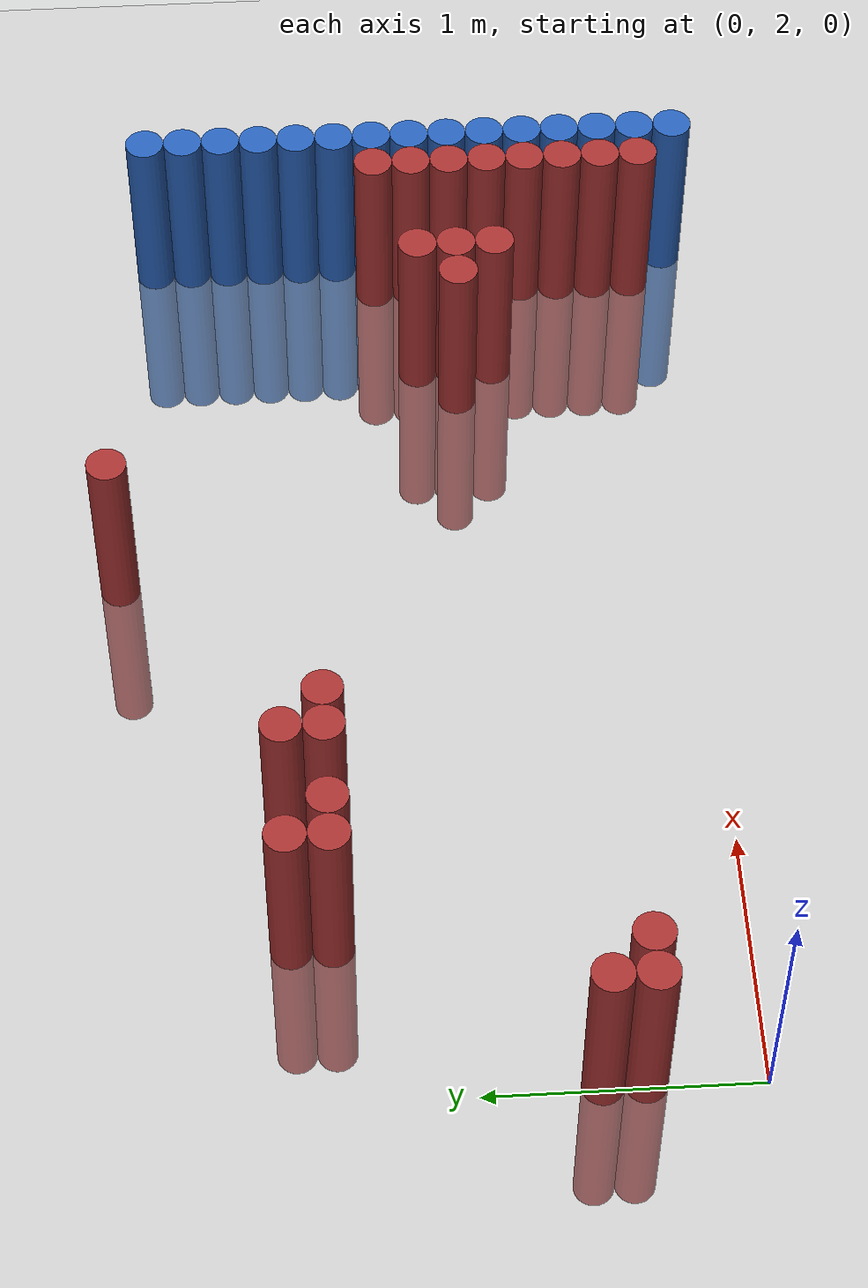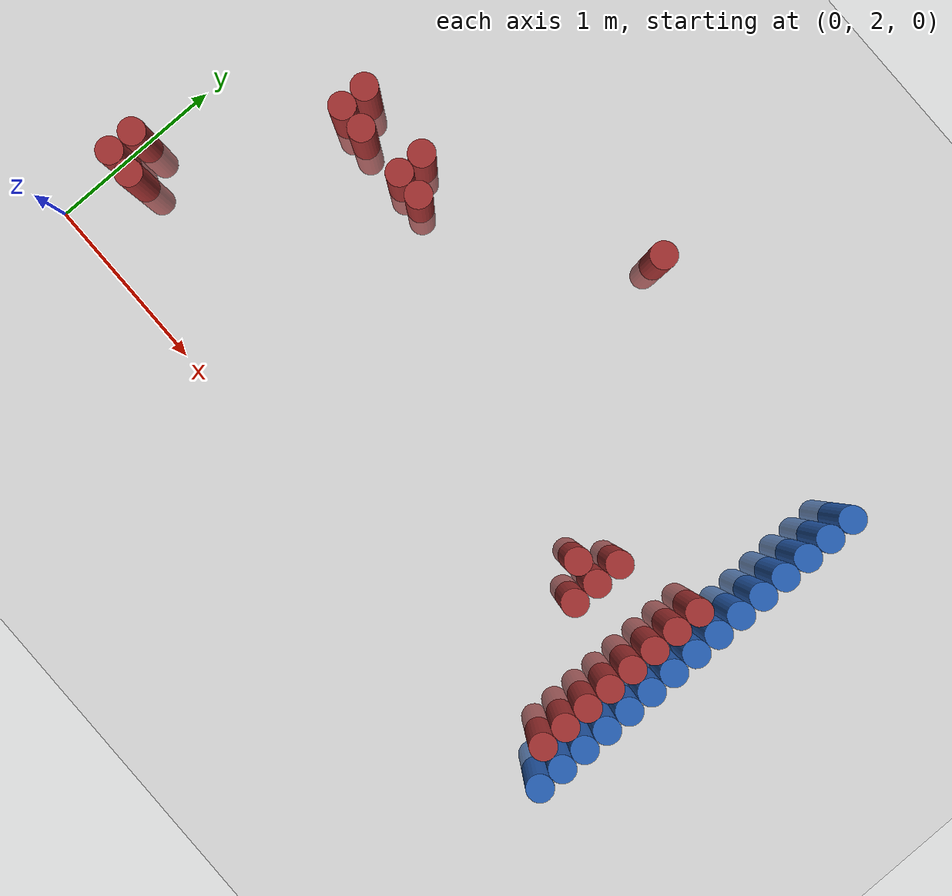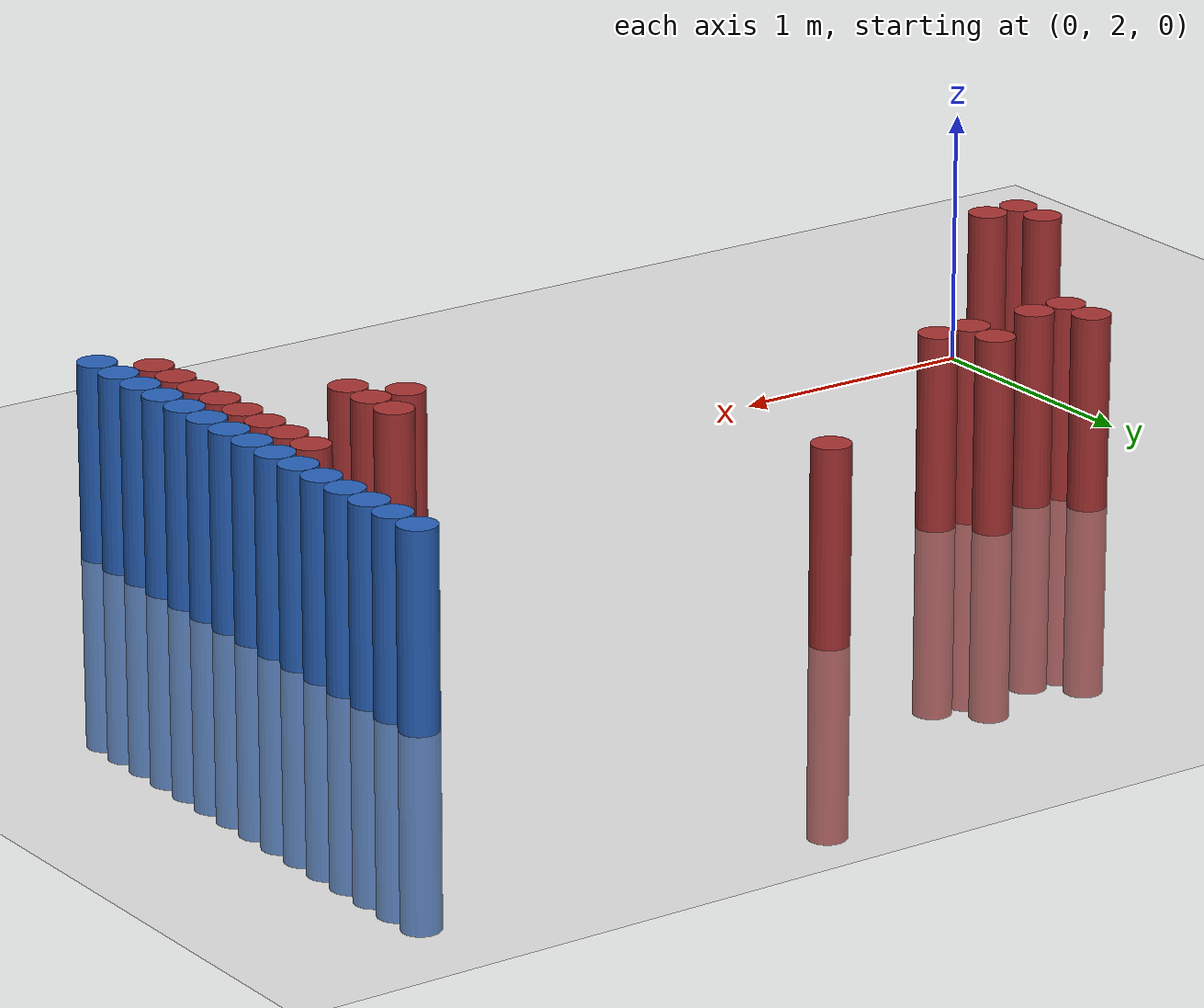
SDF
<sdf version="1.6">
 <world name="default">
  <model name="ground_plane">
   <static>1</static>
   <link name="link">
    <collision name="collision">
     <geometry><plane><normal>0 0 1</normal><size>100 100</size></plane></geometry>
     <surface><friction><ode><mu>100</mu><mu2>50</mu2></ode></friction></surface>
    </collision>
    <visual name="visual">
     <cast_shadows>0</cast_shadows>
     <geometry><plane><normal>0 0 1</normal><size>100 100</size></plane></geometry>
     <material>
      <script><uri>file://media/materials/scripts/gazebo.material</uri><name>Gazebo/Grey</name></script>
     </material>
    </visual>
   </link>
  </model>
  <model name="unit_cylinder_142">
   <static>1</static>
   <pose>3.925000 2.125000 0.000000 0.000000 0.000000 0.000000</pose>
   <link name="link">
    <inertial>
     <mass>1</mass>
     <inertia><ixx>0.145833</ixx><ixy>0</ixy><ixz>0</ixz><iyy>0.145833</iyy><iyz>0</iyz><izz>0.125</izz></inertia>
    </inertial>
    <collision name="collision">
     <geometry><cylinder><radius>0.075000</radius><length>1.5</length></cylinder></geometry>
    </collision>
    <visual name="visual">
     <geometry><cylinder><radius>0.075000</radius><length>1.5</length></cylinder></geometry>
     <material>
      <ambient>0.152000 0.379000 0.720000 1</ambient>
      <diffuse>0.152000 0.379000 0.720000 1</diffuse>
     </material>
     <material>
      <script><name>Gazebo/Grey</name><uri>file://media/materials/scripts/gazebo.material</uri></script>
     </material>
    </visual>
   </link>
  </model>
  <model name="unit_cylinder_144">
   <static>1</static>
   <pose>3.925000 2.275000 0.000000 0.000000 0.000000 0.000000</pose>
   <link name="link">
    <inertial>
     <mass>1</mass>
     <inertia><ixx>0.145833</ixx><ixy>0</ixy><ixz>0</ixz><iyy>0.145833</iyy><iyz>0</iyz><izz>0.125</izz></inertia>
    </inertial>
    <collision name="collision">
     <geometry><cylinder><radius>0.075000</radius><length>1.5</length></cylinder></geometry>
    </collision>
    <visual name="visual">
     <geometry><cylinder><radius>0.075000</radius><length>1.5</length></cylinder></geometry>
     <material>
      <ambient>0.152000 0.379000 0.720000 1</ambient>
      <diffuse>0.152000 0.379000 0.720000 1</diffuse>
     </material>
     <material>
      <script><name>Gazebo/Grey</name><uri>file://media/materials/scripts/gazebo.material</uri></script>
     </material>
    </visual>
   </link>
  </model>
  <model name="unit_cylinder_146">
   <static>1</static>
   <pose>3.925000 2.425000 0.000000 0.000000 0.000000 0.000000</pose>
   <link name="link">
    <inertial>
     <mass>1</mass>
     <inertia><ixx>0.145833</ixx><ixy>0</ixy><ixz>0</ixz><iyy>0.145833</iyy><iyz>0</iyz><izz>0.125</izz></inertia>
    </inertial>
    <collision name="collision">
     <geometry><cylinder><radius>0.075000</radius><length>1.5</length></cylinder></geometry>
    </collision>
    <visual name="visual">
     <geometry><cylinder><radius>0.075000</radius><length>1.5</length></cylinder></geometry>
     <material>
      <ambient>0.152000 0.379000 0.720000 1</ambient>
      <diffuse>0.152000 0.379000 0.720000 1</diffuse>
     </material>
     <material>
      <script><name>Gazebo/Grey</name><uri>file://media/materials/scripts/gazebo.material</uri></script>
     </material>
    </visual>
   </link>
  </model>
  <model name="unit_cylinder_148">
   <static>1</static>
   <pose>3.925000 2.575000 0.000000 0.000000 0.000000 0.000000</pose>
   <link name="link">
    <inertial>
     <mass>1</mass>
     <inertia><ixx>0.145833</ixx><ixy>0</ixy><ixz>0</ixz><iyy>0.145833</iyy><iyz>0</iyz><izz>0.125</izz></inertia>
    </inertial>
    <collision name="collision">
     <geometry><cylinder><radius>0.075000</radius><length>1.5</length></cylinder></geometry>
    </collision>
    <visual name="visual">
     <geometry><cylinder><radius>0.075000</radius><length>1.5</length></cylinder></geometry>
     <material>
      <ambient>0.152000 0.379000 0.720000 1</ambient>
      <diffuse>0.152000 0.379000 0.720000 1</diffuse>
     </material>
     <material>
      <script><name>Gazebo/Grey</name><uri>file://media/materials/scripts/gazebo.material</uri></script>
     </material>
    </visual>
   </link>
  </model>
  <model name="unit_cylinder_150">
   <static>1</static>
   <pose>3.925000 2.725000 0.000000 0.000000 0.000000 0.000000</pose>
   <link name="link">
    <inertial>
     <mass>1</mass>
     <inertia><ixx>0.145833</ixx><ixy>0</ixy><ixz>0</ixz><iyy>0.145833</iyy><iyz>0</iyz><izz>0.125</izz></inertia>
    </inertial>
    <collision name="collision">
     <geometry><cylinder><radius>0.075000</radius><length>1.5</length></cylinder></geometry>
    </collision>
    <visual name="visual">
     <geometry><cylinder><radius>0.075000</radius><length>1.5</length></cylinder></geometry>
     <material>
      <ambient>0.152000 0.379000 0.720000 1</ambient>
      <diffuse>0.152000 0.379000 0.720000 1</diffuse>
     </material>
     <material>
      <script><name>Gazebo/Grey</name><uri>file://media/materials/scripts/gazebo.material</uri></script>
     </material>
    </visual>
   </link>
  </model>
  <model name="unit_cylinder_152">
   <static>1</static>
   <pose>3.925000 2.875000 0.000000 0.000000 0.000000 0.000000</pose>
   <link name="link">
    <inertial>
     <mass>1</mass>
     <inertia><ixx>0.145833</ixx><ixy>0</ixy><ixz>0</ixz><iyy>0.145833</iyy><iyz>0</iyz><izz>0.125</izz></inertia>
    </inertial>
    <collision name="collision">
     <geometry><cylinder><radius>0.075000</radius><length>1.5</length></cylinder></geometry>
    </collision>
    <visual name="visual">
     <geometry><cylinder><radius>0.075000</radius><length>1.5</length></cylinder></geometry>
     <material>
      <ambient>0.152000 0.379000 0.720000 1</ambient>
      <diffuse>0.152000 0.379000 0.720000 1</diffuse>
     </material>
     <material>
      <script><name>Gazebo/Grey</name><uri>file://media/materials/scripts/gazebo.material</uri></script>
     </material>
    </visual>
   </link>
  </model>
  <model name="unit_cylinder_154">
   <static>1</static>
   <pose>3.925000 3.025000 0.000000 0.000000 0.000000 0.000000</pose>
   <link name="link">
    <inertial>
     <mass>1</mass>
     <inertia><ixx>0.145833</ixx><ixy>0</ixy><ixz>0</ixz><iyy>0.145833</iyy><iyz>0</iyz><izz>0.125</izz></inertia>
    </inertial>
    <collision name="collision">
     <geometry><cylinder><radius>0.075000</radius><length>1.5</length></cylinder></geometry>
    </collision>
    <visual name="visual">
     <geometry><cylinder><radius>0.075000</radius><length>1.5</length></cylinder></geometry>
     <material>
      <ambient>0.152000 0.379000 0.720000 1</ambient>
      <diffuse>0.152000 0.379000 0.720000 1</diffuse>
     </material>
     <material>
      <script><name>Gazebo/Grey</name><uri>file://media/materials/scripts/gazebo.material</uri></script>
     </material>
    </visual>
   </link>
  </model>
  <model name="unit_cylinder_156">
   <static>1</static>
   <pose>3.925000 3.175000 0.000000 0.000000 0.000000 0.000000</pose>
   <link name="link">
    <inertial>
     <mass>1</mass>
     <inertia><ixx>0.145833</ixx><ixy>0</ixy><ixz>0</ixz><iyy>0.145833</iyy><iyz>0</iyz><izz>0.125</izz></inertia>
    </inertial>
    <collision name="collision">
     <geometry><cylinder><radius>0.075000</radius><length>1.5</length></cylinder></geometry>
    </collision>
    <visual name="visual">
     <geometry><cylinder><radius>0.075000</radius><length>1.5</length></cylinder></geometry>
     <material>
      <ambient>0.152000 0.379000 0.720000 1</ambient>
      <diffuse>0.152000 0.379000 0.720000 1</diffuse>
     </material>
     <material>
      <script><name>Gazebo/Grey</name><uri>file://media/materials/scripts/gazebo.material</uri></script>
     </material>
    </visual>
   </link>
  </model>
  <model name="unit_cylinder_158">
   <static>1</static>
   <pose>3.925000 3.325000 0.000000 0.000000 0.000000 0.000000</pose>
   <link name="link">
    <inertial>
     <mass>1</mass>
     <inertia><ixx>0.145833</ixx><ixy>0</ixy><ixz>0</ixz><iyy>0.145833</iyy><iyz>0</iyz><izz>0.125</izz></inertia>
    </inertial>
    <collision name="collision">
     <geometry><cylinder><radius>0.075000</radius><length>1.5</length></cylinder></geometry>
    </collision>
    <visual name="visual">
     <geometry><cylinder><radius>0.075000</radius><length>1.5</length></cylinder></geometry>
     <material>
      <ambient>0.152000 0.379000 0.720000 1</ambient>
      <diffuse>0.152000 0.379000 0.720000 1</diffuse>
     </material>
     <material>
      <script><name>Gazebo/Grey</name><uri>file://media/materials/scripts/gazebo.material</uri></script>
     </material>
    </visual>
   </link>
  </model>
  <model name="unit_cylinder_160">
   <static>1</static>
   <pose>3.925000 3.475000 0.000000 0.000000 0.000000 0.000000</pose>
   <link name="link">
    <inertial>
     <mass>1</mass>
     <inertia><ixx>0.145833</ixx><ixy>0</ixy><ixz>0</ixz><iyy>0.145833</iyy><iyz>0</iyz><izz>0.125</izz></inertia>
    </inertial>
    <collision name="collision">
     <geometry><cylinder><radius>0.075000</radius><length>1.5</length></cylinder></geometry>
    </collision>
    <visual name="visual">
     <geometry><cylinder><radius>0.075000</radius><length>1.5</length></cylinder></geometry>
     <material>
      <ambient>0.152000 0.379000 0.720000 1</ambient>
      <diffuse>0.152000 0.379000 0.720000 1</diffuse>
     </material>
     <material>
      <script><name>Gazebo/Grey</name><uri>file://media/materials/scripts/gazebo.material</uri></script>
     </material>
    </visual>
   </link>
  </model>
  <model name="unit_cylinder_162">
   <static>1</static>
   <pose>3.925000 3.625000 0.000000 0.000000 0.000000 0.000000</pose>
   <link name="link">
    <inertial>
     <mass>1</mass>
     <inertia><ixx>0.145833</ixx><ixy>0</ixy><ixz>0</ixz><iyy>0.145833</iyy><iyz>0</iyz><izz>0.125</izz></inertia>
    </inertial>
    <collision name="collision">
     <geometry><cylinder><radius>0.075000</radius><length>1.5</length></cylinder></geometry>
    </collision>
    <visual name="visual">
     <geometry><cylinder><radius>0.075000</radius><length>1.5</length></cylinder></geometry>
     <material>
      <ambient>0.152000 0.379000 0.720000 1</ambient>
      <diffuse>0.152000 0.379000 0.720000 1</diffuse>
     </material>
     <material>
      <script><name>Gazebo/Grey</name><uri>file://media/materials/scripts/gazebo.material</uri></script>
     </material>
    </visual>
   </link>
  </model>
  <model name="unit_cylinder_164">
   <static>1</static>
   <pose>3.925000 3.775000 0.000000 0.000000 0.000000 0.000000</pose>
   <link name="link">
    <inertial>
     <mass>1</mass>
     <inertia><ixx>0.145833</ixx><ixy>0</ixy><ixz>0</ixz><iyy>0.145833</iyy><iyz>0</iyz><izz>0.125</izz></inertia>
    </inertial>
    <collision name="collision">
     <geometry><cylinder><radius>0.075000</radius><length>1.5</length></cylinder></geometry>
    </collision>
    <visual name="visual">
     <geometry><cylinder><radius>0.075000</radius><length>1.5</length></cylinder></geometry>
     <material>
      <ambient>0.152000 0.379000 0.720000 1</ambient>
      <diffuse>0.152000 0.379000 0.720000 1</diffuse>
     </material>
     <material>
      <script><name>Gazebo/Grey</name><uri>file://media/materials/scripts/gazebo.material</uri></script>
     </material>
    </visual>
   </link>
  </model>
  <model name="unit_cylinder_166">
   <static>1</static>
   <pose>3.925000 3.925000 0.000000 0.000000 0.000000 0.000000</pose>
   <link name="link">
    <inertial>
     <mass>1</mass>
     <inertia><ixx>0.145833</ixx><ixy>0</ixy><ixz>0</ixz><iyy>0.145833</iyy><iyz>0</iyz><izz>0.125</izz></inertia>
    </inertial>
    <collision name="collision">
     <geometry><cylinder><radius>0.075000</radius><length>1.5</length></cylinder></geometry>
    </collision>
    <visual name="visual">
     <geometry><cylinder><radius>0.075000</radius><length>1.5</length></cylinder></geometry>
     <material>
      <ambient>0.152000 0.379000 0.720000 1</ambient>
      <diffuse>0.152000 0.379000 0.720000 1</diffuse>
     </material>
     <material>
      <script><name>Gazebo/Grey</name><uri>file://media/materials/scripts/gazebo.material</uri></script>
     </material>
    </visual>
   </link>
  </model>
  <model name="unit_cylinder_168">
   <static>1</static>
   <pose>3.925000 4.075000 0.000000 0.000000 0.000000 0.000000</pose>
   <link name="link">
    <inertial>
     <mass>1</mass>
     <inertia><ixx>0.145833</ixx><ixy>0</ixy><ixz>0</ixz><iyy>0.145833</iyy><iyz>0</iyz><izz>0.125</izz></inertia>
    </inertial>
    <collision name="collision">
     <geometry><cylinder><radius>0.075000</radius><length>1.5</length></cylinder></geometry>
    </collision>
    <visual name="visual">
     <geometry><cylinder><radius>0.075000</radius><length>1.5</length></cylinder></geometry>
     <material>
      <ambient>0.152000 0.379000 0.720000 1</ambient>
      <diffuse>0.152000 0.379000 0.720000 1</diffuse>
     </material>
     <material>
      <script><name>Gazebo/Grey</name><uri>file://media/materials/scripts/gazebo.material</uri></script>
     </material>
    </visual>
   </link>
  </model>
  <model name="unit_cylinder_322">
   <static>1</static>
   <pose>0.025000 2.425000 0.000000 0.000000 0.000000 0.000000</pose>
   <link name="link">
    <inertial>
     <mass>1</mass>
     <inertia><ixx>0.145833</ixx><ixy>0</ixy><ixz>0</ixz><iyy>0.145833</iyy><iyz>0</iyz><izz>0.125</izz></inertia>
    </inertial>
    <collision name="collision">
     <geometry><cylinder><radius>0.075000</radius><length>1.5</length></cylinder></geometry>
    </collision>
    <visual name="visual">
     <geometry><cylinder><radius>0.075000</radius><length>1.5</length></cylinder></geometry>
     <material>
      <ambient>0.648000 0.192000 0.192000 1</ambient>
      <diffuse>0.648000 0.192000 0.192000 1</diffuse>
     </material>
     <material>
      <script><name>Gazebo/Grey</name><uri>file://media/materials/scripts/gazebo.material</uri></script>
     </material>
    </visual>
   </link>
  </model>
  <model name="unit_cylinder_323">
   <static>1</static>
   <pose>0.025000 2.575000 0.000000 0.000000 0.000000 0.000000</pose>
   <link name="link">
    <inertial>
     <mass>1</mass>
     <inertia><ixx>0.145833</ixx><ixy>0</ixy><ixz>0</ixz><iyy>0.145833</iyy><iyz>0</iyz><izz>0.125</izz></inertia>
    </inertial>
    <collision name="collision">
     <geometry><cylinder><radius>0.075000</radius><length>1.5</length></cylinder></geometry>
    </collision>
    <visual name="visual">
     <geometry><cylinder><radius>0.075000</radius><length>1.5</length></cylinder></geometry>
     <material>
      <ambient>0.648000 0.192000 0.192000 1</ambient>
      <diffuse>0.648000 0.192000 0.192000 1</diffuse>
     </material>
     <material>
      <script><name>Gazebo/Grey</name><uri>file://media/materials/scripts/gazebo.material</uri></script>
     </material>
    </visual>
   </link>
  </model>
  <model name="unit_cylinder_330">
   <static>1</static>
   <pose>0.175000 2.425000 0.000000 0.000000 0.000000 0.000000</pose>
   <link name="link">
    <inertial>
     <mass>1</mass>
     <inertia><ixx>0.145833</ixx><ixy>0</ixy><ixz>0</ixz><iyy>0.145833</iyy><iyz>0</iyz><izz>0.125</izz></inertia>
    </inertial>
    <collision name="collision">
     <geometry><cylinder><radius>0.075000</radius><length>1.5</length></cylinder></geometry>
    </collision>
    <visual name="visual">
     <geometry><cylinder><radius>0.075000</radius><length>1.5</length></cylinder></geometry>
     <material>
      <ambient>0.648000 0.192000 0.192000 1</ambient>
      <diffuse>0.648000 0.192000 0.192000 1</diffuse>
     </material>
     <material>
      <script><name>Gazebo/Grey</name><uri>file://media/materials/scripts/gazebo.material</uri></script>
     </material>
    </visual>
   </link>
  </model>
  <model name="unit_cylinder_342">
   <static>1</static>
   <pose>0.625000 3.475000 0.000000 0.000000 0.000000 0.000000</pose>
   <link name="link">
    <inertial>
     <mass>1</mass>
     <inertia><ixx>0.145833</ixx><ixy>0</ixy><ixz>0</ixz><iyy>0.145833</iyy><iyz>0</iyz><izz>0.125</izz></inertia>
    </inertial>
    <collision name="collision">
     <geometry><cylinder><radius>0.075000</radius><length>1.5</length></cylinder></geometry>
    </collision>
    <visual name="visual">
     <geometry><cylinder><radius>0.075000</radius><length>1.5</length></cylinder></geometry>
     <material>
      <ambient>0.648000 0.192000 0.192000 1</ambient>
      <diffuse>0.648000 0.192000 0.192000 1</diffuse>
     </material>
     <material>
      <script><name>Gazebo/Grey</name><uri>file://media/materials/scripts/gazebo.material</uri></script>
     </material>
    </visual>
   </link>
  </model>
  <model name="unit_cylinder_343">
   <static>1</static>
   <pose>0.625000 3.625000 0.000000 0.000000 0.000000 0.000000</pose>
   <link name="link">
    <inertial>
     <mass>1</mass>
     <inertia><ixx>0.145833</ixx><ixy>0</ixy><ixz>0</ixz><iyy>0.145833</iyy><iyz>0</iyz><izz>0.125</izz></inertia>
    </inertial>
    <collision name="collision">
     <geometry><cylinder><radius>0.075000</radius><length>1.5</length></cylinder></geometry>
    </collision>
    <visual name="visual">
     <geometry><cylinder><radius>0.075000</radius><length>1.5</length></cylinder></geometry>
     <material>
      <ambient>0.648000 0.192000 0.192000 1</ambient>
      <diffuse>0.648000 0.192000 0.192000 1</diffuse>
     </material>
     <material>
      <script><name>Gazebo/Grey</name><uri>file://media/materials/scripts/gazebo.material</uri></script>
     </material>
    </visual>
   </link>
  </model>
  <model name="unit_cylinder_346">
   <static>1</static>
   <pose>0.775000 3.475000 0.000000 0.000000 0.000000 0.000000</pose>
   <link name="link">
    <inertial>
     <mass>1</mass>
     <inertia><ixx>0.145833</ixx><ixy>0</ixy><ixz>0</ixz><iyy>0.145833</iyy><iyz>0</iyz><izz>0.125</izz></inertia>
    </inertial>
    <collision name="collision">
     <geometry><cylinder><radius>0.075000</radius><length>1.5</length></cylinder></geometry>
    </collision>
    <visual name="visual">
     <geometry><cylinder><radius>0.075000</radius><length>1.5</length></cylinder></geometry>
     <material>
      <ambient>0.648000 0.192000 0.192000 1</ambient>
      <diffuse>0.648000 0.192000 0.192000 1</diffuse>
     </material>
     <material>
      <script><name>Gazebo/Grey</name><uri>file://media/materials/scripts/gazebo.material</uri></script>
     </material>
    </visual>
   </link>
  </model>
  <model name="unit_cylinder_351">
   <static>1</static>
   <pose>1.075000 3.475000 0.000000 0.000000 0.000000 0.000000</pose>
   <link name="link">
    <inertial>
     <mass>1</mass>
     <inertia><ixx>0.145833</ixx><ixy>0</ixy><ixz>0</ixz><iyy>0.145833</iyy><iyz>0</iyz><izz>0.125</izz></inertia>
    </inertial>
    <collision name="collision">
     <geometry><cylinder><radius>0.075000</radius><length>1.5</length></cylinder></geometry>
    </collision>
    <visual name="visual">
     <geometry><cylinder><radius>0.075000</radius><length>1.5</length></cylinder></geometry>
     <material>
      <ambient>0.648000 0.192000 0.192000 1</ambient>
      <diffuse>0.648000 0.192000 0.192000 1</diffuse>
     </material>
     <material>
      <script><name>Gazebo/Grey</name><uri>file://media/materials/scripts/gazebo.material</uri></script>
     </material>
    </visual>
   </link>
  </model>
  <model name="unit_cylinder_352">
   <static>1</static>
   <pose>1.075000 3.625000 0.000000 0.000000 0.000000 0.000000</pose>
   <link name="link">
    <inertial>
     <mass>1</mass>
     <inertia><ixx>0.145833</ixx><ixy>0</ixy><ixz>0</ixz><iyy>0.145833</iyy><iyz>0</iyz><izz>0.125</izz></inertia>
    </inertial>
    <collision name="collision">
     <geometry><cylinder><radius>0.075000</radius><length>1.5</length></cylinder></geometry>
    </collision>
    <visual name="visual">
     <geometry><cylinder><radius>0.075000</radius><length>1.5</length></cylinder></geometry>
     <material>
      <ambient>0.648000 0.192000 0.192000 1</ambient>
      <diffuse>0.648000 0.192000 0.192000 1</diffuse>
     </material>
     <material>
      <script><name>Gazebo/Grey</name><uri>file://media/materials/scripts/gazebo.material</uri></script>
     </material>
    </visual>
   </link>
  </model>
  <model name="unit_cylinder_353">
   <static>1</static>
   <pose>1.225000 3.475000 0.000000 0.000000 0.000000 0.000000</pose>
   <link name="link">
    <inertial>
     <mass>1</mass>
     <inertia><ixx>0.145833</ixx><ixy>0</ixy><ixz>0</ixz><iyy>0.145833</iyy><iyz>0</iyz><izz>0.125</izz></inertia>
    </inertial>
    <collision name="collision">
     <geometry><cylinder><radius>0.075000</radius><length>1.5</length></cylinder></geometry>
    </collision>
    <visual name="visual">
     <geometry><cylinder><radius>0.075000</radius><length>1.5</length></cylinder></geometry>
     <material>
      <ambient>0.648000 0.192000 0.192000 1</ambient>
      <diffuse>0.648000 0.192000 0.192000 1</diffuse>
     </material>
     <material>
      <script><name>Gazebo/Grey</name><uri>file://media/materials/scripts/gazebo.material</uri></script>
     </material>
    </visual>
   </link>
  </model>
  <model name="unit_cylinder_373">
   <static>1</static>
   <pose>2.275000 4.225000 0.000000 0.000000 0.000000 0.000000</pose>
   <link name="link">
    <inertial>
     <mass>1</mass>
     <inertia><ixx>0.145833</ixx><ixy>0</ixy><ixz>0</ixz><iyy>0.145833</iyy><iyz>0</iyz><izz>0.125</izz></inertia>
    </inertial>
    <collision name="collision">
     <geometry><cylinder><radius>0.075000</radius><length>1.5</length></cylinder></geometry>
    </collision>
    <visual name="visual">
     <geometry><cylinder><radius>0.075000</radius><length>1.5</length></cylinder></geometry>
     <material>
      <ambient>0.648000 0.192000 0.192000 1</ambient>
      <diffuse>0.648000 0.192000 0.192000 1</diffuse>
     </material>
     <material>
      <script><name>Gazebo/Grey</name><uri>file://media/materials/scripts/gazebo.material</uri></script>
     </material>
    </visual>
   </link>
  </model>
  <model name="unit_cylinder_410">
   <static>1</static>
   <pose>3.175000 2.875000 0.000000 0.000000 0.000000 0.000000</pose>
   <link name="link">
    <inertial>
     <mass>1</mass>
     <inertia><ixx>0.145833</ixx><ixy>0</ixy><ixz>0</ixz><iyy>0.145833</iyy><iyz>0</iyz><izz>0.125</izz></inertia>
    </inertial>
    <collision name="collision">
     <geometry><cylinder><radius>0.075000</radius><length>1.5</length></cylinder></geometry>
    </collision>
    <visual name="visual">
     <geometry><cylinder><radius>0.075000</radius><length>1.5</length></cylinder></geometry>
     <material>
      <ambient>0.648000 0.192000 0.192000 1</ambient>
      <diffuse>0.648000 0.192000 0.192000 1</diffuse>
     </material>
     <material>
      <script><name>Gazebo/Grey</name><uri>file://media/materials/scripts/gazebo.material</uri></script>
     </material>
    </visual>
   </link>
  </model>
  <model name="unit_cylinder_417">
   <static>1</static>
   <pose>3.325000 2.725000 0.000000 0.000000 0.000000 0.000000</pose>
   <link name="link">
    <inertial>
     <mass>1</mass>
     <inertia><ixx>0.145833</ixx><ixy>0</ixy><ixz>0</ixz><iyy>0.145833</iyy><iyz>0</iyz><izz>0.125</izz></inertia>
    </inertial>
    <collision name="collision">
     <geometry><cylinder><radius>0.075000</radius><length>1.5</length></cylinder></geometry>
    </collision>
    <visual name="visual">
     <geometry><cylinder><radius>0.075000</radius><length>1.5</length></cylinder></geometry>
     <material>
      <ambient>0.648000 0.192000 0.192000 1</ambient>
      <diffuse>0.648000 0.192000 0.192000 1</diffuse>
     </material>
     <material>
      <script><name>Gazebo/Grey</name><uri>file://media/materials/scripts/gazebo.material</uri></script>
     </material>
    </visual>
   </link>
  </model>
  <model name="unit_cylinder_418">
   <static>1</static>
   <pose>3.325000 2.875000 0.000000 0.000000 0.000000 0.000000</pose>
   <link name="link">
    <inertial>
     <mass>1</mass>
     <inertia><ixx>0.145833</ixx><ixy>0</ixy><ixz>0</ixz><iyy>0.145833</iyy><iyz>0</iyz><izz>0.125</izz></inertia>
    </inertial>
    <collision name="collision">
     <geometry><cylinder><radius>0.075000</radius><length>1.5</length></cylinder></geometry>
    </collision>
    <visual name="visual">
     <geometry><cylinder><radius>0.075000</radius><length>1.5</length></cylinder></geometry>
     <material>
      <ambient>0.648000 0.192000 0.192000 1</ambient>
      <diffuse>0.648000 0.192000 0.192000 1</diffuse>
     </material>
     <material>
      <script><name>Gazebo/Grey</name><uri>file://media/materials/scripts/gazebo.material</uri></script>
     </material>
    </visual>
   </link>
  </model>
  <model name="unit_cylinder_419">
   <static>1</static>
   <pose>3.325000 3.025000 0.000000 0.000000 0.000000 0.000000</pose>
   <link name="link">
    <inertial>
     <mass>1</mass>
     <inertia><ixx>0.145833</ixx><ixy>0</ixy><ixz>0</ixz><iyy>0.145833</iyy><iyz>0</iyz><izz>0.125</izz></inertia>
    </inertial>
    <collision name="collision">
     <geometry><cylinder><radius>0.075000</radius><length>1.5</length></cylinder></geometry>
    </collision>
    <visual name="visual">
     <geometry><cylinder><radius>0.075000</radius><length>1.5</length></cylinder></geometry>
     <material>
      <ambient>0.648000 0.192000 0.192000 1</ambient>
      <diffuse>0.648000 0.192000 0.192000 1</diffuse>
     </material>
     <material>
      <script><name>Gazebo/Grey</name><uri>file://media/materials/scripts/gazebo.material</uri></script>
     </material>
    </visual>
   </link>
  </model>
  <model name="unit_cylinder_441">
   <static>1</static>
   <pose>3.775000 2.125000 0.000000 0.000000 0.000000 0.000000</pose>
   <link name="link">
    <inertial>
     <mass>1</mass>
     <inertia><ixx>0.145833</ixx><ixy>0</ixy><ixz>0</ixz><iyy>0.145833</iyy><iyz>0</iyz><izz>0.125</izz></inertia>
    </inertial>
    <collision name="collision">
     <geometry><cylinder><radius>0.075000</radius><length>1.5</length></cylinder></geometry>
    </collision>
    <visual name="visual">
     <geometry><cylinder><radius>0.075000</radius><length>1.5</length></cylinder></geometry>
     <material>
      <ambient>0.648000 0.192000 0.192000 1</ambient>
      <diffuse>0.648000 0.192000 0.192000 1</diffuse>
     </material>
     <material>
      <script><name>Gazebo/Grey</name><uri>file://media/materials/scripts/gazebo.material</uri></script>
     </material>
    </visual>
   </link>
  </model>
  <model name="unit_cylinder_442">
   <static>1</static>
   <pose>3.775000 2.275000 0.000000 0.000000 0.000000 0.000000</pose>
   <link name="link">
    <inertial>
     <mass>1</mass>
     <inertia><ixx>0.145833</ixx><ixy>0</ixy><ixz>0</ixz><iyy>0.145833</iyy><iyz>0</iyz><izz>0.125</izz></inertia>
    </inertial>
    <collision name="collision">
     <geometry><cylinder><radius>0.075000</radius><length>1.5</length></cylinder></geometry>
    </collision>
    <visual name="visual">
     <geometry><cylinder><radius>0.075000</radius><length>1.5</length></cylinder></geometry>
     <material>
      <ambient>0.648000 0.192000 0.192000 1</ambient>
      <diffuse>0.648000 0.192000 0.192000 1</diffuse>
     </material>
     <material>
      <script><name>Gazebo/Grey</name><uri>file://media/materials/scripts/gazebo.material</uri></script>
     </material>
    </visual>
   </link>
  </model>
  <model name="unit_cylinder_443">
   <static>1</static>
   <pose>3.775000 2.425000 0.000000 0.000000 0.000000 0.000000</pose>
   <link name="link">
    <inertial>
     <mass>1</mass>
     <inertia><ixx>0.145833</ixx><ixy>0</ixy><ixz>0</ixz><iyy>0.145833</iyy><iyz>0</iyz><izz>0.125</izz></inertia>
    </inertial>
    <collision name="collision">
     <geometry><cylinder><radius>0.075000</radius><length>1.5</length></cylinder></geometry>
    </collision>
    <visual name="visual">
     <geometry><cylinder><radius>0.075000</radius><length>1.5</length></cylinder></geometry>
     <material>
      <ambient>0.648000 0.192000 0.192000 1</ambient>
      <diffuse>0.648000 0.192000 0.192000 1</diffuse>
     </material>
     <material>
      <script><name>Gazebo/Grey</name><uri>file://media/materials/scripts/gazebo.material</uri></script>
     </material>
    </visual>
   </link>
  </model>
  <model name="unit_cylinder_444">
   <static>1</static>
   <pose>3.775000 2.575000 0.000000 0.000000 0.000000 0.000000</pose>
   <link name="link">
    <inertial>
     <mass>1</mass>
     <inertia><ixx>0.145833</ixx><ixy>0</ixy><ixz>0</ixz><iyy>0.145833</iyy><iyz>0</iyz><izz>0.125</izz></inertia>
    </inertial>
    <collision name="collision">
     <geometry><cylinder><radius>0.075000</radius><length>1.5</length></cylinder></geometry>
    </collision>
    <visual name="visual">
     <geometry><cylinder><radius>0.075000</radius><length>1.5</length></cylinder></geometry>
     <material>
      <ambient>0.648000 0.192000 0.192000 1</ambient>
      <diffuse>0.648000 0.192000 0.192000 1</diffuse>
     </material>
     <material>
      <script><name>Gazebo/Grey</name><uri>file://media/materials/scripts/gazebo.material</uri></script>
     </material>
    </visual>
   </link>
  </model>
  <model name="unit_cylinder_445">
   <static>1</static>
   <pose>3.775000 2.725000 0.000000 0.000000 0.000000 0.000000</pose>
   <link name="link">
    <inertial>
     <mass>1</mass>
     <inertia><ixx>0.145833</ixx><ixy>0</ixy><ixz>0</ixz><iyy>0.145833</iyy><iyz>0</iyz><izz>0.125</izz></inertia>
    </inertial>
    <collision name="collision">
     <geometry><cylinder><radius>0.075000</radius><length>1.5</length></cylinder></geometry>
    </collision>
    <visual name="visual">
     <geometry><cylinder><radius>0.075000</radius><length>1.5</length></cylinder></geometry>
     <material>
      <ambient>0.648000 0.192000 0.192000 1</ambient>
      <diffuse>0.648000 0.192000 0.192000 1</diffuse>
     </material>
     <material>
      <script><name>Gazebo/Grey</name><uri>file://media/materials/scripts/gazebo.material</uri></script>
     </material>
    </visual>
   </link>
  </model>
  <model name="unit_cylinder_446">
   <static>1</static>
   <pose>3.775000 2.875000 0.000000 0.000000 0.000000 0.000000</pose>
   <link name="link">
    <inertial>
     <mass>1</mass>
     <inertia><ixx>0.145833</ixx><ixy>0</ixy><ixz>0</ixz><iyy>0.145833</iyy><iyz>0</iyz><izz>0.125</izz></inertia>
    </inertial>
    <collision name="collision">
     <geometry><cylinder><radius>0.075000</radius><length>1.5</length></cylinder></geometry>
    </collision>
    <visual name="visual">
     <geometry><cylinder><radius>0.075000</radius><length>1.5</length></cylinder></geometry>
     <material>
      <ambient>0.648000 0.192000 0.192000 1</ambient>
      <diffuse>0.648000 0.192000 0.192000 1</diffuse>
     </material>
     <material>
      <script><name>Gazebo/Grey</name><uri>file://media/materials/scripts/gazebo.material</uri></script>
     </material>
    </visual>
   </link>
  </model>
  <model name="unit_cylinder_447">
   <static>1</static>
   <pose>3.775000 3.025000 0.000000 0.000000 0.000000 0.000000</pose>
   <link name="link">
    <inertial>
     <mass>1</mass>
     <inertia><ixx>0.145833</ixx><ixy>0</ixy><ixz>0</ixz><iyy>0.145833</iyy><iyz>0</iyz><izz>0.125</izz></inertia>
    </inertial>
    <collision name="collision">
     <geometry><cylinder><radius>0.075000</radius><length>1.5</length></cylinder></geometry>
    </collision>
    <visual name="visual">
     <geometry><cylinder><radius>0.075000</radius><length>1.5</length></cylinder></geometry>
     <material>
      <ambient>0.648000 0.192000 0.192000 1</ambient>
      <diffuse>0.648000 0.192000 0.192000 1</diffuse>
     </material>
     <material>
      <script><name>Gazebo/Grey</name><uri>file://media/materials/scripts/gazebo.material</uri></script>
     </material>
    </visual>
   </link>
  </model>
  <model name="unit_cylinder_448">
   <static>1</static>
   <pose>3.775000 3.175000 0.000000 0.000000 0.000000 0.000000</pose>
   <link name="link">
    <inertial>
     <mass>1</mass>
     <inertia><ixx>0.145833</ixx><ixy>0</ixy><ixz>0</ixz><iyy>0.145833</iyy><iyz>0</iyz><izz>0.125</izz></inertia>
    </inertial>
    <collision name="collision">
     <geometry><cylinder><radius>0.075000</radius><length>1.5</length></cylinder></geometry>
    </collision>
    <visual name="visual">
     <geometry><cylinder><radius>0.075000</radius><length>1.5</length></cylinder></geometry>
     <material>
      <ambient>0.648000 0.192000 0.192000 1</ambient>
      <diffuse>0.648000 0.192000 0.192000 1</diffuse>
     </material>
     <material>
      <script><name>Gazebo/Grey</name><uri>file://media/materials/scripts/gazebo.material</uri></script>
     </material>
    </visual>
   </link>
  </model>
  <model name="unit_cylinder_483">
   <static>1</static>
   <pose>3.925000 1.975000 0.000000 0.000000 0.000000 0.000000</pose>
   <link name="link">
    <inertial>
     <mass>1</mass>
     <inertia><ixx>0.145833</ixx><ixy>0</ixy><ixz>0</ixz><iyy>0.145833</iyy><iyz>0</iyz><izz>0.125</izz></inertia>
    </inertial>
    <collision name="collision">
     <geometry><cylinder><radius>0.075000</radius><length>1.5</length></cylinder></geometry>
    </collision>
    <visual name="visual">
     <geometry><cylinder><radius>0.075000</radius><length>1.5</length></cylinder></geometry>
     <material>
      <ambient>0.152000 0.379000 0.720000 1</ambient>
      <diffuse>0.152000 0.379000 0.720000 1</diffuse>
     </material>
     <material>
      <script><name>Gazebo/Grey</name><uri>file://media/materials/scripts/gazebo.material</uri></script>
     </material>
    </visual>
   </link>
  </model>
  <model name="unit_cylinder_484">
   <static>1</static>
   <pose>3.925000 2.125000 0.000000 0.000000 0.000000 0.000000</pose>
   <link name="link">
    <inertial>
     <mass>1</mass>
     <inertia><ixx>0.145833</ixx><ixy>0</ixy><ixz>0</ixz><iyy>0.145833</iyy><iyz>0</iyz><izz>0.125</izz></inertia>
    </inertial>
    <collision name="collision">
     <geometry><cylinder><radius>0.075000</radius><length>1.5</length></cylinder></geometry>
    </collision>
    <visual name="visual">
     <geometry><cylinder><radius>0.075000</radius><length>1.5</length></cylinder></geometry>
     <material>
      <ambient>0.152000 0.379000 0.720000 1</ambient>
      <diffuse>0.152000 0.379000 0.720000 1</diffuse>
     </material>
     <material>
      <script><name>Gazebo/Grey</name><uri>file://media/materials/scripts/gazebo.material</uri></script>
     </material>
    </visual>
   </link>
  </model>
  <model name="unit_cylinder_485">
   <static>1</static>
   <pose>3.925000 2.275000 0.000000 0.000000 0.000000 0.000000</pose>
   <link name="link">
    <inertial>
     <mass>1</mass>
     <inertia><ixx>0.145833</ixx><ixy>0</ixy><ixz>0</ixz><iyy>0.145833</iyy><iyz>0</iyz><izz>0.125</izz></inertia>
    </inertial>
    <collision name="collision">
     <geometry><cylinder><radius>0.075000</radius><length>1.5</length></cylinder></geometry>
    </collision>
    <visual name="visual">
     <geometry><cylinder><radius>0.075000</radius><length>1.5</length></cylinder></geometry>
     <material>
      <ambient>0.152000 0.379000 0.720000 1</ambient>
      <diffuse>0.152000 0.379000 0.720000 1</diffuse>
     </material>
     <material>
      <script><name>Gazebo/Grey</name><uri>file://media/materials/scripts/gazebo.material</uri></script>
     </material>
    </visual>
   </link>
  </model>
  <model name="unit_cylinder_486">
   <static>1</static>
   <pose>3.925000 2.425000 0.000000 0.000000 0.000000 0.000000</pose>
   <link name="link">
    <inertial>
     <mass>1</mass>
     <inertia><ixx>0.145833</ixx><ixy>0</ixy><ixz>0</ixz><iyy>0.145833</iyy><iyz>0</iyz><izz>0.125</izz></inertia>
    </inertial>
    <collision name="collision">
     <geometry><cylinder><radius>0.075000</radius><length>1.5</length></cylinder></geometry>
    </collision>
    <visual name="visual">
     <geometry><cylinder><radius>0.075000</radius><length>1.5</length></cylinder></geometry>
     <material>
      <ambient>0.152000 0.379000 0.720000 1</ambient>
      <diffuse>0.152000 0.379000 0.720000 1</diffuse>
     </material>
     <material>
      <script><name>Gazebo/Grey</name><uri>file://media/materials/scripts/gazebo.material</uri></script>
     </material>
    </visual>
   </link>
  </model>
  <model name="unit_cylinder_487">
   <static>1</static>
   <pose>3.925000 2.575000 0.000000 0.000000 0.000000 0.000000</pose>
   <link name="link">
    <inertial>
     <mass>1</mass>
     <inertia><ixx>0.145833</ixx><ixy>0</ixy><ixz>0</ixz><iyy>0.145833</iyy><iyz>0</iyz><izz>0.125</izz></inertia>
    </inertial>
    <collision name="collision">
     <geometry><cylinder><radius>0.075000</radius><length>1.5</length></cylinder></geometry>
    </collision>
    <visual name="visual">
     <geometry><cylinder><radius>0.075000</radius><length>1.5</length></cylinder></geometry>
     <material>
      <ambient>0.152000 0.379000 0.720000 1</ambient>
      <diffuse>0.152000 0.379000 0.720000 1</diffuse>
     </material>
     <material>
      <script><name>Gazebo/Grey</name><uri>file://media/materials/scripts/gazebo.material</uri></script>
     </material>
    </visual>
   </link>
  </model>
  <model name="unit_cylinder_488">
   <static>1</static>
   <pose>3.925000 2.725000 0.000000 0.000000 0.000000 0.000000</pose>
   <link name="link">
    <inertial>
     <mass>1</mass>
     <inertia><ixx>0.145833</ixx><ixy>0</ixy><ixz>0</ixz><iyy>0.145833</iyy><iyz>0</iyz><izz>0.125</izz></inertia>
    </inertial>
    <collision name="collision">
     <geometry><cylinder><radius>0.075000</radius><length>1.5</length></cylinder></geometry>
    </collision>
    <visual name="visual">
     <geometry><cylinder><radius>0.075000</radius><length>1.5</length></cylinder></geometry>
     <material>
      <ambient>0.152000 0.379000 0.720000 1</ambient>
      <diffuse>0.152000 0.379000 0.720000 1</diffuse>
     </material>
     <material>
      <script><name>Gazebo/Grey</name><uri>file://media/materials/scripts/gazebo.material</uri></script>
     </material>
    </visual>
   </link>
  </model>
  <model name="unit_cylinder_489">
   <static>1</static>
   <pose>3.925000 2.875000 0.000000 0.000000 0.000000 0.000000</pose>
   <link name="link">
    <inertial>
     <mass>1</mass>
     <inertia><ixx>0.145833</ixx><ixy>0</ixy><ixz>0</ixz><iyy>0.145833</iyy><iyz>0</iyz><izz>0.125</izz></inertia>
    </inertial>
    <collision name="collision">
     <geometry><cylinder><radius>0.075000</radius><length>1.5</length></cylinder></geometry>
    </collision>
    <visual name="visual">
     <geometry><cylinder><radius>0.075000</radius><length>1.5</length></cylinder></geometry>
     <material>
      <ambient>0.152000 0.379000 0.720000 1</ambient>
      <diffuse>0.152000 0.379000 0.720000 1</diffuse>
     </material>
     <material>
      <script><name>Gazebo/Grey</name><uri>file://media/materials/scripts/gazebo.material</uri></script>
     </material>
    </visual>
   </link>
  </model>
  <model name="unit_cylinder_490">
   <static>1</static>
   <pose>3.925000 3.025000 0.000000 0.000000 0.000000 0.000000</pose>
   <link name="link">
    <inertial>
     <mass>1</mass>
     <inertia><ixx>0.145833</ixx><ixy>0</ixy><ixz>0</ixz><iyy>0.145833</iyy><iyz>0</iyz><izz>0.125</izz></inertia>
    </inertial>
    <collision name="collision">
     <geometry><cylinder><radius>0.075000</radius><length>1.5</length></cylinder></geometry>
    </collision>
    <visual name="visual">
     <geometry><cylinder><radius>0.075000</radius><length>1.5</length></cylinder></geometry>
     <material>
      <ambient>0.152000 0.379000 0.720000 1</ambient>
      <diffuse>0.152000 0.379000 0.720000 1</diffuse>
     </material>
     <material>
      <script><name>Gazebo/Grey</name><uri>file://media/materials/scripts/gazebo.material</uri></script>
     </material>
    </visual>
   </link>
  </model>
  <model name="unit_cylinder_491">
   <static>1</static>
   <pose>3.925000 3.175000 0.000000 0.000000 0.000000 0.000000</pose>
   <link name="link">
    <inertial>
     <mass>1</mass>
     <inertia><ixx>0.145833</ixx><ixy>0</ixy><ixz>0</ixz><iyy>0.145833</iyy><iyz>0</iyz><izz>0.125</izz></inertia>
    </inertial>
    <collision name="collision">
     <geometry><cylinder><radius>0.075000</radius><length>1.5</length></cylinder></geometry>
    </collision>
    <visual name="visual">
     <geometry><cylinder><radius>0.075000</radius><length>1.5</length></cylinder></geometry>
     <material>
      <ambient>0.152000 0.379000 0.720000 1</ambient>
      <diffuse>0.152000 0.379000 0.720000 1</diffuse>
     </material>
     <material>
      <script><name>Gazebo/Grey</name><uri>file://media/materials/scripts/gazebo.material</uri></script>
     </material>
    </visual>
   </link>
  </model>
  <model name="unit_cylinder_492">
   <static>1</static>
   <pose>3.925000 3.325000 0.000000 0.000000 0.000000 0.000000</pose>
   <link name="link">
    <inertial>
     <mass>1</mass>
     <inertia><ixx>0.145833</ixx><ixy>0</ixy><ixz>0</ixz><iyy>0.145833</iyy><iyz>0</iyz><izz>0.125</izz></inertia>
    </inertial>
    <collision name="collision">
     <geometry><cylinder><radius>0.075000</radius><length>1.5</length></cylinder></geometry>
    </collision>
    <visual name="visual">
     <geometry><cylinder><radius>0.075000</radius><length>1.5</length></cylinder></geometry>
     <material>
      <ambient>0.152000 0.379000 0.720000 1</ambient>
      <diffuse>0.152000 0.379000 0.720000 1</diffuse>
     </material>
     <material>
      <script><name>Gazebo/Grey</name><uri>file://media/materials/scripts/gazebo.material</uri></script>
     </material>
    </visual>
   </link>
  </model>
  <model name="unit_cylinder_493">
   <static>1</static>
   <pose>3.925000 3.475000 0.000000 0.000000 0.000000 0.000000</pose>
   <link name="link">
    <inertial>
     <mass>1</mass>
     <inertia><ixx>0.145833</ixx><ixy>0</ixy><ixz>0</ixz><iyy>0.145833</iyy><iyz>0</iyz><izz>0.125</izz></inertia>
    </inertial>
    <collision name="collision">
     <geometry><cylinder><radius>0.075000</radius><length>1.5</length></cylinder></geometry>
    </collision>
    <visual name="visual">
     <geometry><cylinder><radius>0.075000</radius><length>1.5</length></cylinder></geometry>
     <material>
      <ambient>0.152000 0.379000 0.720000 1</ambient>
      <diffuse>0.152000 0.379000 0.720000 1</diffuse>
     </material>
     <material>
      <script><name>Gazebo/Grey</name><uri>file://media/materials/scripts/gazebo.material</uri></script>
     </material>
    </visual>
   </link>
  </model>
  <model name="unit_cylinder_494">
   <static>1</static>
   <pose>3.925000 3.625000 0.000000 0.000000 0.000000 0.000000</pose>
   <link name="link">
    <inertial>
     <mass>1</mass>
     <inertia><ixx>0.145833</ixx><ixy>0</ixy><ixz>0</ixz><iyy>0.145833</iyy><iyz>0</iyz><izz>0.125</izz></inertia>
    </inertial>
    <collision name="collision">
     <geometry><cylinder><radius>0.075000</radius><length>1.5</length></cylinder></geometry>
    </collision>
    <visual name="visual">
     <geometry><cylinder><radius>0.075000</radius><length>1.5</length></cylinder></geometry>
     <material>
      <ambient>0.152000 0.379000 0.720000 1</ambient>
      <diffuse>0.152000 0.379000 0.720000 1</diffuse>
     </material>
     <material>
      <script><name>Gazebo/Grey</name><uri>file://media/materials/scripts/gazebo.material</uri></script>
     </material>
    </visual>
   </link>
  </model>
  <model name="unit_cylinder_495">
   <static>1</static>
   <pose>3.925000 3.775000 0.000000 0.000000 0.000000 0.000000</pose>
   <link name="link">
    <inertial>
     <mass>1</mass>
     <inertia><ixx>0.145833</ixx><ixy>0</ixy><ixz>0</ixz><iyy>0.145833</iyy><iyz>0</iyz><izz>0.125</izz></inertia>
    </inertial>
    <collision name="collision">
     <geometry><cylinder><radius>0.075000</radius><length>1.5</length></cylinder></geometry>
    </collision>
    <visual name="visual">
     <geometry><cylinder><radius>0.075000</radius><length>1.5</length></cylinder></geometry>
     <material>
      <ambient>0.152000 0.379000 0.720000 1</ambient>
      <diffuse>0.152000 0.379000 0.720000 1</diffuse>
     </material>
     <material>
      <script><name>Gazebo/Grey</name><uri>file://media/materials/scripts/gazebo.material</uri></script>
     </material>
    </visual>
   </link>
  </model>
  <model name="unit_cylinder_496">
   <static>1</static>
   <pose>3.925000 3.925000 0.000000 0.000000 0.000000 0.000000</pose>
   <link name="link">
    <inertial>
     <mass>1</mass>
     <inertia><ixx>0.145833</ixx><ixy>0</ixy><ixz>0</ixz><iyy>0.145833</iyy><iyz>0</iyz><izz>0.125</izz></inertia>
    </inertial>
    <collision name="collision">
     <geometry><cylinder><radius>0.075000</radius><length>1.5</length></cylinder></geometry>
    </collision>
    <visual name="visual">
     <geometry><cylinder><radius>0.075000</radius><length>1.5</length></cylinder></geometry>
     <material>
      <ambient>0.152000 0.379000 0.720000 1</ambient>
      <diffuse>0.152000 0.379000 0.720000 1</diffuse>
     </material>
     <material>
      <script><name>Gazebo/Grey</name><uri>file://media/materials/scripts/gazebo.material</uri></script>
     </material>
    </visual>
   </link>
  </model>
  <model name="unit_cylinder_497">
   <static>1</static>
   <pose>3.925000 4.075000 0.000000 0.000000 0.000000 0.000000</pose>
   <link name="link">
    <inertial>
     <mass>1</mass>
     <inertia><ixx>0.145833</ixx><ixy>0</ixy><ixz>0</ixz><iyy>0.145833</iyy><iyz>0</iyz><izz>0.125</izz></inertia>
    </inertial>
    <collision name="collision">
     <geometry><cylinder><radius>0.075000</radius><length>1.5</length></cylinder></geometry>
    </collision>
    <visual name="visual">
     <geometry><cylinder><radius>0.075000</radius><length>1.5</length></cylinder></geometry>
     <material>
      <ambient>0.152000 0.379000 0.720000 1</ambient>
      <diffuse>0.152000 0.379000 0.720000 1</diffuse>
     </material>
     <material>
      <script><name>Gazebo/Grey</name><uri>file://media/materials/scripts/gazebo.material</uri></script>
     </material>
    </visual>
   </link>
  </model>
 </world>
</sdf>
